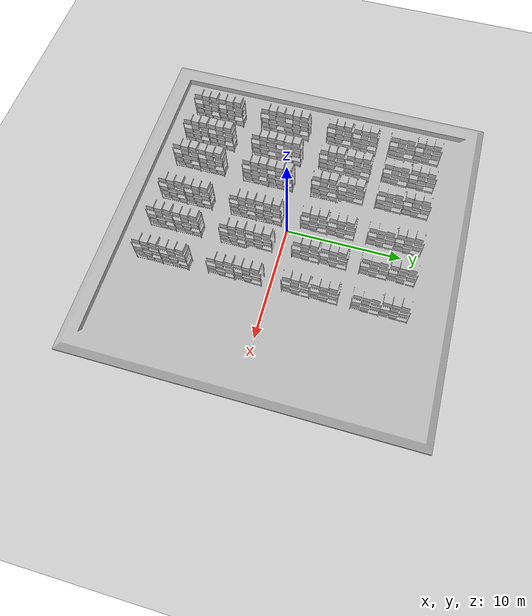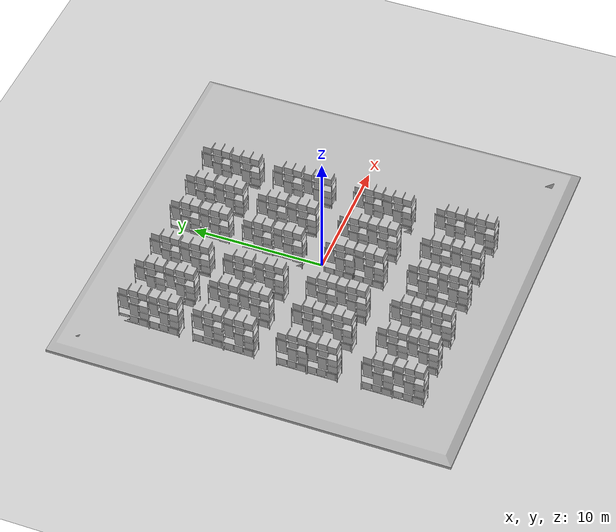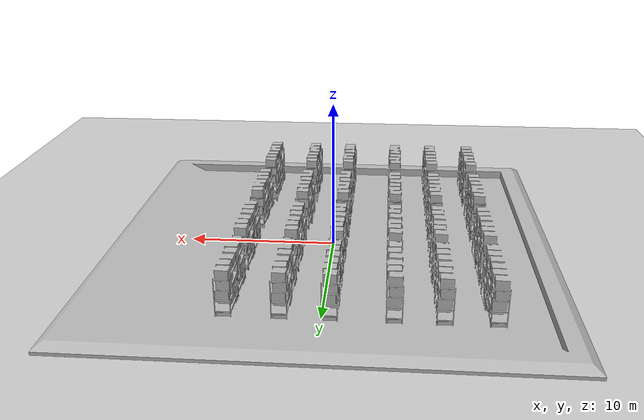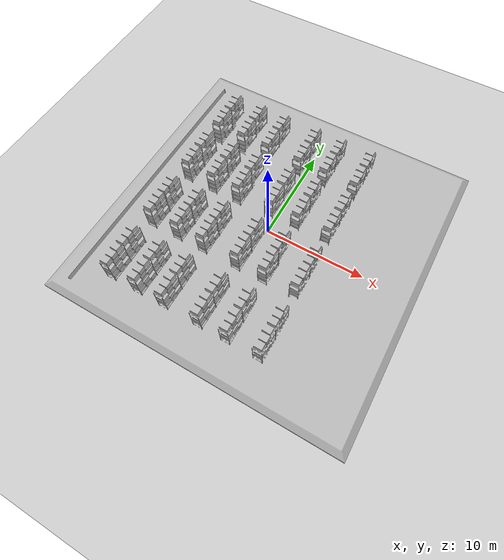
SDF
<?xml version="1.0"?>
<sdf version='1.9'>
  <world name='logistics_warehouse'>
    <physics name='1ms' type='ignored'>
      <max_step_size>0.001</max_step_size>
      <real_time_factor>1</real_time_factor>
      <real_time_update_rate>1000</real_time_update_rate>
    </physics>
    <plugin
      filename="gz-sim-physics-system"
      name="gz::sim::systems::Physics">
    </plugin>
    <plugin
      filename="gz-sim-user-commands-system"
      name="gz::sim::systems::UserCommands">
    </plugin>
    <plugin
      filename="gz-sim-scene-broadcaster-system"
      name="gz::sim::systems::SceneBroadcaster">
    </plugin>
    <plugin
      filename="gz-sim-contact-system"
      name="gz::sim::systems::Contact">
    </plugin>
    <plugin
      filename="gz-sim-sensors-system"
      name="gz::sim::systems::Sensors">
      <render_engine>ogre2</render_engine>
    </plugin>
    <plugin filename="gz-sim-imu-system"
        name="gz::sim::systems::Imu">
    </plugin>
  <gravity>0 0 -9.8</gravity>
    <model name='ground_plane'>
      <static>true</static>
      <link name='link'>
        <collision name='collision'>
          <geometry>
            <plane>
              <normal>0 0 1</normal>
              <size>1 1</size>
            </plane>
          </geometry>
          <surface>
            <friction>
              <ode/>
            </friction>
            <bounce/>
            <contact/>
          </surface>
        </collision>
        <visual name='visual'>
          <geometry>
            <plane>
              <normal>0 0 1</normal>
              <size>100 100</size>
            </plane>
          </geometry>
          <material>
            <ambient>0.8 0.8 0.8 1</ambient>
            <diffuse>0.8 0.8 0.8 1</diffuse>
            <specular>0.8 0.8 0.8 1</specular>
          </material>
        </visual>
        <pose>0 0 0 0 -0 0</pose>
        <inertial>
          <pose>0 0 0 0 -0 0</pose>
          <mass>1</mass>
          <inertia>
            <ixx>1</ixx>
            <ixy>0</ixy>
            <ixz>0</ixz>
            <iyy>1</iyy>
            <iyz>0</iyz>
            <izz>1</izz>
          </inertia>
        </inertial>
        <enable_wind>false</enable_wind>
      </link>
      <pose>0 0 0 0 -0 0</pose>
      <self_collide>false</self_collide>
    </model>
    <model name='map'>
      <pose>0.00 0.00 0.10 0.00 0.00 3.14</pose>
      <static>true</static>
      <link name='link'>
        <collision name='collision'>
          <geometry>
            <mesh>
              <uri>meshes/map.obj</uri>
              <scale>1 1 1</scale>
            </mesh>
          </geometry>
        </collision>
        <visual name='visual'>
          <geometry>
            <mesh>
              <uri>meshes/map.obj</uri>
              <scale>1 1 1</scale>
            </mesh>
          </geometry>
        </visual>
      </link>
    </model>
    <light name='sun' type='directional'>
      <pose>0 0 10 0 -0 0</pose>
      <cast_shadows>true</cast_shadows>
      <intensity>1</intensity>
      <direction>-0.5 0.1 -0.9</direction>
      <diffuse>0.8 0.8 0.8 1</diffuse>
      <specular>0.2 0.2 0.2 1</specular>
      <attenuation>
        <range>1000</range>
        <linear>0.01</linear>
        <constant>0.90000000000000002</constant>
        <quadratic>0.001</quadratic>
      </attenuation>
      <spot>
        <inner_angle>0</inner_angle>
        <outer_angle>0</outer_angle>
        <falloff>0</falloff>
      </spot>
    </light>
  </world>
</sdf>
